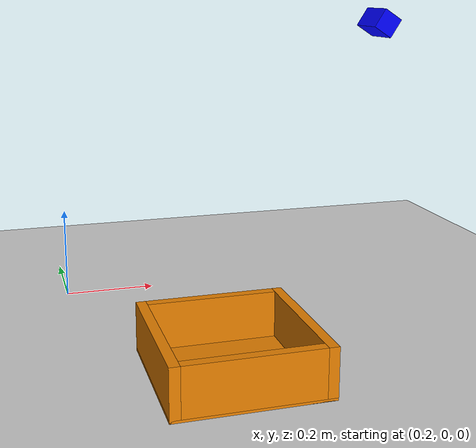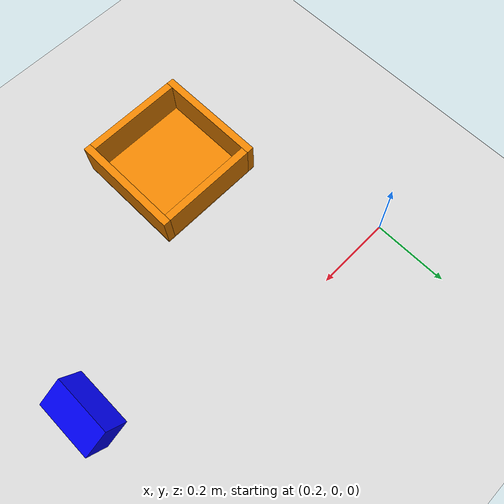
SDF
<?xml version="1.0" ?>
<sdf version="1.8">
  <world name="icgnet_world">

    <plugin filename="libignition-gazebo6-physics-system.so"
            name="ignition::gazebo::systems::Physics">
      <engine>
        <filename>libignition-physics5-dartsim-plugin.so</filename>
      </engine>
    </plugin>

    <!-- Sensors system: render_engine=ogre for WSL2/OGRE1 compatibility.
         Provides RGB-D camera output. Must be ogre (not ogre2) on WSL2. -->
    <plugin filename="libignition-gazebo6-sensors-system.so"
            name="ignition::gazebo::systems::Sensors">
      <render_engine>ogre</render_engine>
    </plugin>

    <!-- Scene broadcaster: publishes scene state to GUI / ROS bridge. -->
    <plugin filename="libignition-gazebo6-scene-broadcaster-system.so"
            name="ignition::gazebo::systems::SceneBroadcaster"/>

    <!-- User commands: enables /world/icgnet_world/create,
         /world/icgnet_world/remove, /world/icgnet_world/set_pose.
         Required for spawn_object and grasp_executor scene reset. -->
    <plugin filename="libignition-gazebo6-user-commands-system.so"
            name="ignition::gazebo::systems::UserCommands"/>

    <!-- Lighting -->
    <light type="directional" name="sun">
      <cast_shadows>true</cast_shadows>
      <pose>0 0 10 0 0 0</pose>
      <diffuse>0.8 0.8 0.8 1</diffuse>
      <specular>0.2 0.2 0.2 1</specular>
      <direction>-0.5 0.1 -0.9</direction>
      <attenuation>
        <range>1000</range>
        <constant>0.9</constant>
        <linear>0.01</linear>
        <quadratic>0.001</quadratic>
      </attenuation>
    </light>

    <gui fullscreen="0">
      <plugin filename="MinimalScene" name="3D View">
        <ignition-gui>
          <title>3D View</title>
          <property type="bool" key="showTitleBar">false</property>
          <property type="string" key="state">docked</property>
        </ignition-gui>
        <engine>ogre</engine>
        <scene>scene</scene>
        <ambient_light>0.4 0.4 0.4</ambient_light>
        <background_color>0.8 0.8 0.8</background_color>
        <camera_pose>1.8 -1.2 1.4  0 0.5 2.4</camera_pose>
      </plugin>
      <plugin filename="GzSceneManager" name="Scene Manager"/>
      <plugin filename="InteractiveViewControl" name="Interactive view control"/>
      <plugin filename="CameraTracking" name="Camera Tracking"/>
      <plugin filename="WorldControl" name="World control">
        <ignition-gui>
          <property type="bool" key="resizable">false</property>
          <property type="string" key="state">floating</property>
        </ignition-gui>
        <play_pause>true</play_pause>
        <step>true</step>
        <use_event>true</use_event>
      </plugin>
    </gui>

    <!-- Ground plane -->
    <model name="ground_plane">
      <static>true</static>
      <link name="link">
        <collision name="collision">
          <geometry>
            <plane>
              <normal>0 0 1</normal>
              <size>100 100</size>
            </plane>
          </geometry>
          <surface>
            <friction>
              <ode>
                <mu>1.0</mu>
                <mu2>1.0</mu2>
              </ode>
            </friction>
          </surface>
        </collision>
        <visual name="visual">
          <cast_shadows>false</cast_shadows>
          <geometry>
            <plane>
              <normal>0 0 1</normal>
              <size>100 100</size>
            </plane>
          </geometry>
          <material>
            <ambient>0.8 0.8 0.8 1</ambient>
            <diffuse>0.8 0.8 0.8 1</diffuse>
          </material>
        </visual>
      </link>
    </model>

    <model name="camera_model">
      <static>true</static>
      <pose>0.97 0 0.616 0 1.0 3.14159</pose>
      <link name="camera_link">
        <visual name="visual">
          <geometry><box><size>0.05 0.1 0.05</size></box></geometry>
          <material><ambient>0 0 1 1</ambient></material>
        </visual>
        <sensor name="rgbd_camera" type="rgbd_camera">
          <camera>
            <horizontal_fov>1.047198</horizontal_fov>
            <image>
              <width>640</width>
              <height>480</height>
            </image>
            <clip>
              <near>0.05</near>
              <far>10.0</far>
            </clip>
          </camera>
          <always_on>1</always_on>
          <update_rate>15</update_rate>
          <visualize>false</visualize>
          <!-- Topic base: publishes to /camera/rgbd_camera/{image,depth_image,points,camera_info} -->
          <topic>/camera/rgbd_camera</topic>
        </sensor>
      </link>
    </model>

    <model name="drop_bin">
      <static>true</static>
      <pose>0.45 -0.50 0 0 0 0</pose>

      <!-- Floor -->
      <link name="floor">
        <collision name="col"><geometry><box><size>0.30 0.30 0.005</size></box></geometry></collision>
        <visual name="vis">
          <pose>0 0 0.0025 0 0 0</pose>
          <geometry><box><size>0.30 0.30 0.005</size></box></geometry>
          <material><ambient>0.9 0.5 0.0 1</ambient><diffuse>0.9 0.5 0.0 1</diffuse></material>
        </visual>
      </link>

      <!-- Wall +X (half = 0.15) -->
      <link name="wall_px">
        <pose>0.14 0 0.05 0 0 0</pose>
        <collision name="col"><geometry><box><size>0.02 0.30 0.10</size></box></geometry></collision>
        <visual name="vis">
          <geometry><box><size>0.02 0.30 0.10</size></box></geometry>
          <material><ambient>0.9 0.5 0.0 1</ambient><diffuse>0.9 0.5 0.0 1</diffuse></material>
        </visual>
      </link>

      <!-- Wall -X -->
      <link name="wall_nx">
        <pose>-0.14 0 0.05 0 0 0</pose>
        <collision name="col"><geometry><box><size>0.02 0.30 0.10</size></box></geometry></collision>
        <visual name="vis">
          <geometry><box><size>0.02 0.30 0.10</size></box></geometry>
          <material><ambient>0.9 0.5 0.0 1</ambient><diffuse>0.9 0.5 0.0 1</diffuse></material>
        </visual>
      </link>

      <!-- Wall +Y -->
      <link name="wall_py">
        <pose>0 0.14 0.05 0 0 0</pose>
        <collision name="col"><geometry><box><size>0.26 0.02 0.10</size></box></geometry></collision>
        <visual name="vis">
          <geometry><box><size>0.26 0.02 0.10</size></box></geometry>
          <material><ambient>0.9 0.5 0.0 1</ambient><diffuse>0.9 0.5 0.0 1</diffuse></material>
        </visual>
      </link>

      <!-- Wall -Y -->
      <link name="wall_ny">
        <pose>0 -0.14 0.05 0 0 0</pose>
        <collision name="col"><geometry><box><size>0.26 0.02 0.10</size></box></geometry></collision>
        <visual name="vis">
          <geometry><box><size>0.26 0.02 0.10</size></box></geometry>
          <material><ambient>0.9 0.5 0.0 1</ambient><diffuse>0.9 0.5 0.0 1</diffuse></material>
        </visual>
      </link>
    </model>

  </world>
</sdf>
